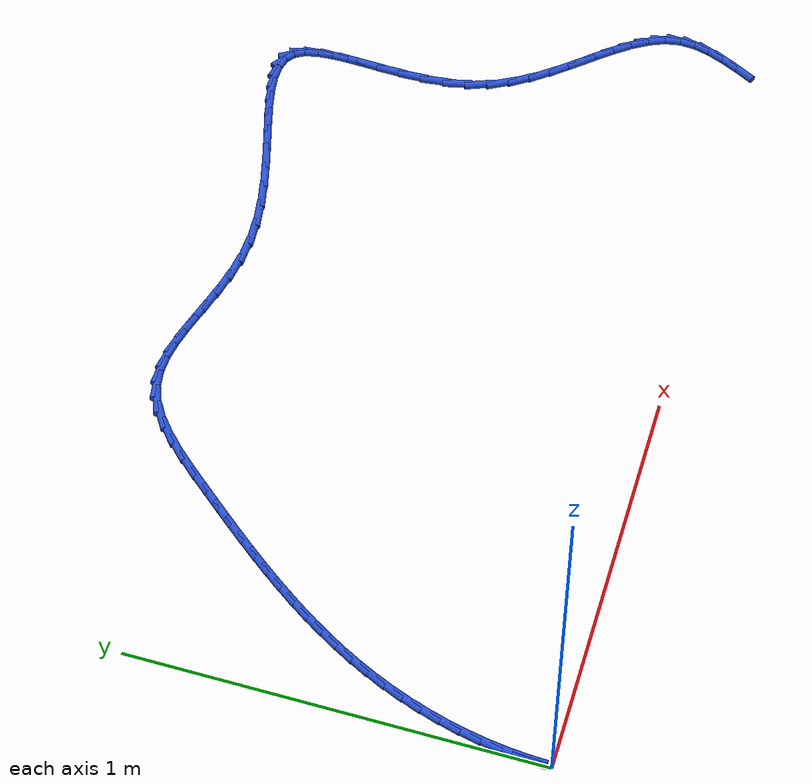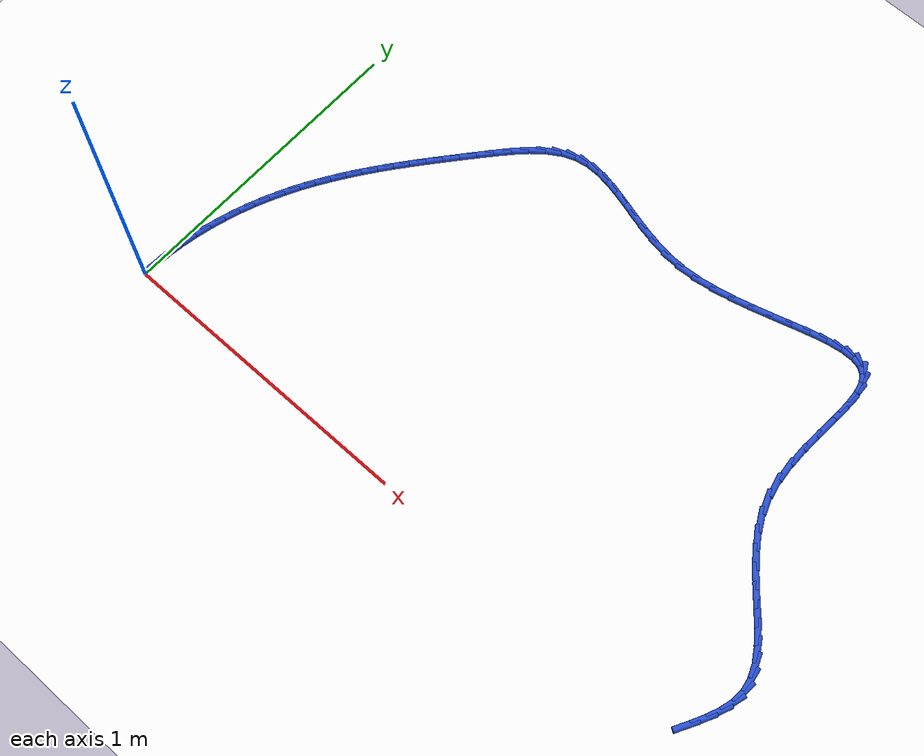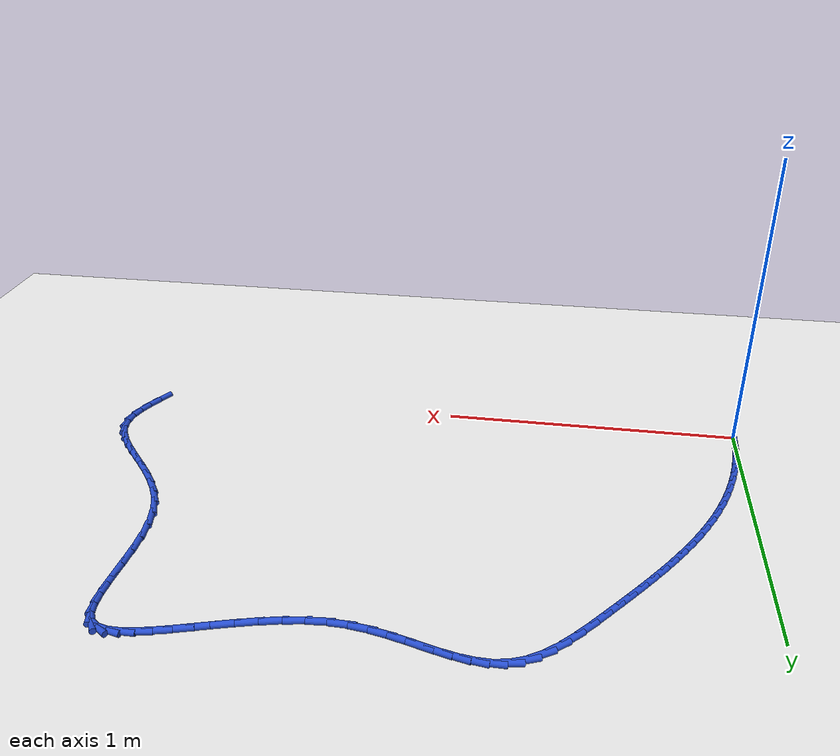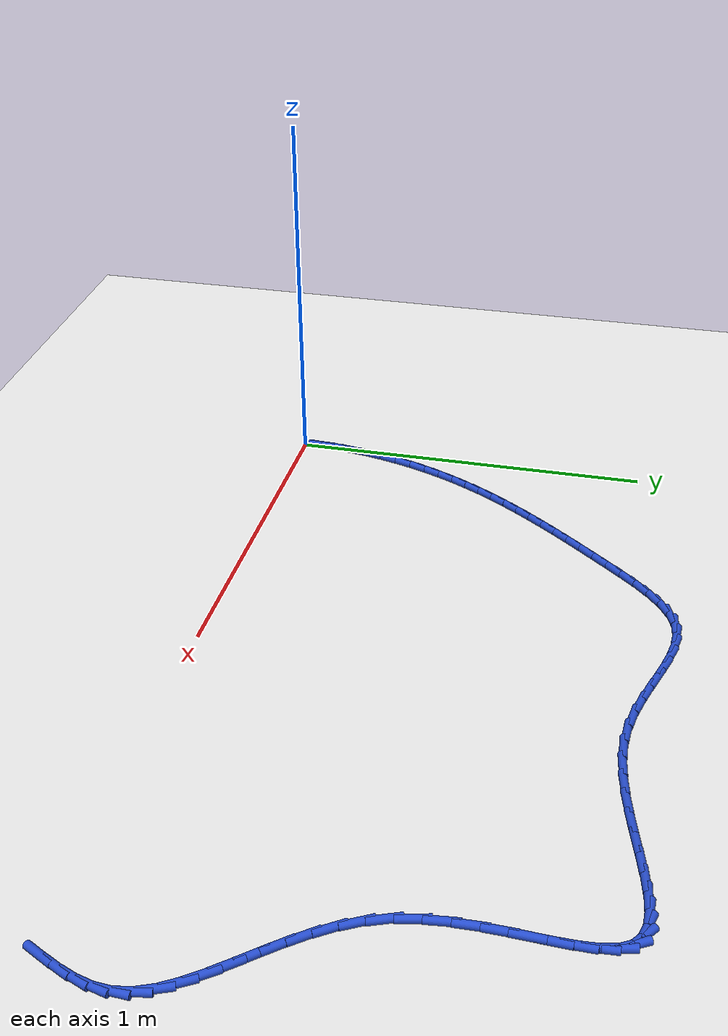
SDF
<sdf version="1.6">
 <world name="default">
  <model name="ground_plane">
   <static>1</static>
   <link name="link">
    <collision name="collision">
     <geometry><plane><normal>0 0 1</normal><size>100 100</size></plane></geometry>
     <surface><friction><ode><mu>100</mu><mu2>50</mu2></ode></friction></surface>
    </collision>
    <visual name="visual">
     <cast_shadows>0</cast_shadows>
     <geometry><plane><normal>0 0 1</normal><size>100 100</size></plane></geometry>
     <material>
      <script><uri>file://media/materials/scripts/gazebo.material</uri><name>Gazebo/WhiteGlow</name></script>
     </material>
    </visual>
   </link>
  </model>
  <model name="line">
   <link name="link_1">
    <pose>0.0019238145655279862 0.05138807101892818 0.01 0 1.57 1.4820030950396204</pose>
    <collision name="collision">
     <geometry><cylinder><radius>0.01</radius><length>0.08</length></cylinder></geometry>
    </collision>
    <visual name="visual">
     <material>
      <script><name>Gazebo/Blue</name><uri>file://media/materials/scripts/gazebo.material</uri></script>
     </material>
     <geometry><cylinder><radius>0.01</radius><length>0.08</length></cylinder></geometry>
    </visual>
   </link>
   <link name="link_2">
    <pose>0.006472638720636303 0.10248276716158493 0.01 0 1.57 1.432549027188589</pose>
    <collision name="collision">
     <geometry><cylinder><radius>0.01</radius><length>0.08</length></cylinder></geometry>
    </collision>
    <visual name="visual">
     <material>
      <script><name>Gazebo/Blue</name><uri>file://media/materials/scripts/gazebo.material</uri></script>
     </material>
     <geometry><cylinder><radius>0.01</radius><length>0.08</length></cylinder></geometry>
    </visual>
   </link>
   <link name="link_3">
    <pose>0.013523373232752885 0.15315832156864048 0.01 0 1.57 1.3848693728598331</pose>
    <collision name="collision">
     <geometry><cylinder><radius>0.01</radius><length>0.08</length></cylinder></geometry>
    </collision>
    <visual name="visual">
     <material>
      <script><name>Gazebo/Blue</name><uri>file://media/materials/scripts/gazebo.material</uri></script>
     </material>
     <geometry><cylinder><radius>0.01</radius><length>0.08</length></cylinder></geometry>
    </visual>
   </link>
   <link name="link_4">
    <pose>0.022952918869305672 0.20328896738076502 0.01 0 1.57 1.3387936132615557</pose>
    <collision name="collision">
     <geometry><cylinder><radius>0.01</radius><length>0.08</length></cylinder></geometry>
    </collision>
    <visual name="visual">
     <material>
      <script><name>Gazebo/Blue</name><uri>file://media/materials/scripts/gazebo.material</uri></script>
     </material>
     <geometry><cylinder><radius>0.01</radius><length>0.08</length></cylinder></geometry>
    </visual>
   </link>
   <link name="link_5">
    <pose>0.034638176397722535 0.25274893773862867 0.01 0 1.57 1.2941311945757217</pose>
    <collision name="collision">
     <geometry><cylinder><radius>0.01</radius><length>0.08</length></cylinder></geometry>
    </collision>
    <visual name="visual">
     <material>
      <script><name>Gazebo/Blue</name><uri>file://media/materials/scripts/gazebo.material</uri></script>
     </material>
     <geometry><cylinder><radius>0.01</radius><length>0.08</length></cylinder></geometry>
    </visual>
   </link>
   <link name="link_6">
    <pose>0.04845604658543143 0.30141246578290176 0.01 0 1.57 1.250675232409833</pose>
    <collision name="collision">
     <geometry><cylinder><radius>0.01</radius><length>0.08</length></cylinder></geometry>
    </collision>
    <visual name="visual">
     <material>
      <script><name>Gazebo/Blue</name><uri>file://media/materials/scripts/gazebo.material</uri></script>
     </material>
     <geometry><cylinder><radius>0.01</radius><length>0.08</length></cylinder></geometry>
    </visual>
   </link>
   <link name="link_7">
    <pose>0.06428343019986027 0.3491537846542544 0.01 0 1.57 1.2082047253122992</pose>
    <collision name="collision">
     <geometry><cylinder><radius>0.01</radius><length>0.08</length></cylinder></geometry>
    </collision>
    <visual name="visual">
     <material>
      <script><name>Gazebo/Blue</name><uri>file://media/materials/scripts/gazebo.material</uri></script>
     </material>
     <geometry><cylinder><radius>0.01</radius><length>0.08</length></cylinder></geometry>
    </visual>
   </link>
   <link name="link_8">
    <pose>0.08199722800843695 0.3958471274933568 0.01 0 1.57 1.1665765389644593</pose>
    <collision name="collision">
     <geometry><cylinder><radius>0.01</radius><length>0.08</length></cylinder></geometry>
    </collision>
    <visual name="visual">
     <material>
      <script><name>Gazebo/Blue</name><uri>file://media/materials/scripts/gazebo.material</uri></script>
     </material>
     <geometry><cylinder><radius>0.01</radius><length>0.08</length></cylinder></geometry>
    </visual>
   </link>
   <link name="link_9">
    <pose>0.10147762272994029 0.4413858772468075 0.01 0 1.57 1.126487077201281</pose>
    <collision name="collision">
     <geometry><cylinder><radius>0.01</radius><length>0.08</length></cylinder></geometry>
    </collision>
    <visual name="visual">
     <material>
      <script><name>Gazebo/Blue</name><uri>file://media/materials/scripts/gazebo.material</uri></script>
     </material>
     <geometry><cylinder><radius>0.01</radius><length>0.08</length></cylinder></geometry>
    </visual>
   </link>
   <link name="link_10">
    <pose>0.12263213767499846 0.48582294604732124 0.01 0 1.57 1.088625387109934</pose>
    <collision name="collision">
     <geometry><cylinder><radius>0.01</radius><length>0.08</length></cylinder></geometry>
    </collision>
    <visual name="visual">
     <material>
      <script><name>Gazebo/Blue</name><uri>file://media/materials/scripts/gazebo.material</uri></script>
     </material>
     <geometry><cylinder><radius>0.01</radius><length>0.08</length></cylinder></geometry>
    </visual>
   </link>
   <link name="link_11">
    <pose>0.1453818709373644 0.5292904533145479 0.01 0 1.57 1.0533178455263743</pose>
    <collision name="collision">
     <geometry><cylinder><radius>0.01</radius><length>0.08</length></cylinder></geometry>
    </collision>
    <visual name="visual">
     <material>
      <script><name>Gazebo/Blue</name><uri>file://media/materials/scripts/gazebo.material</uri></script>
     </material>
     <geometry><cylinder><radius>0.01</radius><length>0.08</length></cylinder></geometry>
    </visual>
   </link>
   <link name="link_12">
    <pose>0.16964801863178497 0.5719210904092823 0.01 0 1.57 1.0208235763637392</pose>
    <collision name="collision">
     <geometry><cylinder><radius>0.01</radius><length>0.08</length></cylinder></geometry>
    </collision>
    <visual name="visual">
     <material>
      <script><name>Gazebo/Blue</name><uri>file://media/materials/scripts/gazebo.material</uri></script>
     </material>
     <geometry><cylinder><radius>0.01</radius><length>0.08</length></cylinder></geometry>
    </visual>
   </link>
   <link name="link_13">
    <pose>0.1953517768730071 0.6138475486923185 0.01 0 1.57 0.9913363438492361</pose>
    <collision name="collision">
     <geometry><cylinder><radius>0.01</radius><length>0.08</length></cylinder></geometry>
    </collision>
    <visual name="visual">
     <material>
      <script><name>Gazebo/Blue</name><uri>file://media/materials/scripts/gazebo.material</uri></script>
     </material>
     <geometry><cylinder><radius>0.01</radius><length>0.08</length></cylinder></geometry>
    </visual>
   </link>
   <link name="link_14">
    <pose>0.22241434177577774 0.6552025195244515 0.01 0 1.57 0.9649876112297826</pose>
    <collision name="collision">
     <geometry><cylinder><radius>0.01</radius><length>0.08</length></cylinder></geometry>
    </collision>
    <visual name="visual">
     <material>
      <script><name>Gazebo/Blue</name><uri>file://media/materials/scripts/gazebo.material</uri></script>
     </material>
     <geometry><cylinder><radius>0.01</radius><length>0.08</length></cylinder></geometry>
    </visual>
   </link>
   <link name="link_15">
    <pose>0.2507569094548437 0.6961186942664758 0.01 0 1.57 0.9418523636959093</pose>
    <collision name="collision">
     <geometry><cylinder><radius>0.01</radius><length>0.08</length></cylinder></geometry>
    </collision>
    <visual name="visual">
     <material>
      <script><name>Gazebo/Blue</name><uri>file://media/materials/scripts/gazebo.material</uri></script>
     </material>
     <geometry><cylinder><radius>0.01</radius><length>0.08</length></cylinder></geometry>
    </visual>
   </link>
   <link name="link_16">
    <pose>0.280300676024952 0.736728764279186 0.01 0 1.57 0.9219565397747371</pose>
    <collision name="collision">
     <geometry><cylinder><radius>0.01</radius><length>0.08</length></cylinder></geometry>
    </collision>
    <visual name="visual">
     <material>
      <script><name>Gazebo/Blue</name><uri>file://media/materials/scripts/gazebo.material</uri></script>
     </material>
     <geometry><cylinder><radius>0.01</radius><length>0.08</length></cylinder></geometry>
    </visual>
   </link>
   <link name="link_17">
    <pose>0.3109668376008495 0.7771654209233767 0.01 0 1.57 0.9052850574311138</pose>
    <collision name="collision">
     <geometry><cylinder><radius>0.01</radius><length>0.08</length></cylinder></geometry>
    </collision>
    <visual name="visual">
     <material>
      <script><name>Gazebo/Blue</name><uri>file://media/materials/scripts/gazebo.material</uri></script>
     </material>
     <geometry><cylinder><radius>0.01</radius><length>0.08</length></cylinder></geometry>
    </visual>
   </link>
   <link name="link_18">
    <pose>0.3426765902972831 0.8175613555598423 0.01 0 1.57 0.8917896555122214</pose>
    <collision name="collision">
     <geometry><cylinder><radius>0.01</radius><length>0.08</length></cylinder></geometry>
    </collision>
    <visual name="visual">
     <material>
      <script><name>Gazebo/Blue</name><uri>file://media/materials/scripts/gazebo.material</uri></script>
     </material>
     <geometry><cylinder><radius>0.01</radius><length>0.08</length></cylinder></geometry>
    </visual>
   </link>
   <link name="link_19">
    <pose>0.3753511302289997 0.8580492595493772 0.01 0 1.57 0.8813960276539247</pose>
    <collision name="collision">
     <geometry><cylinder><radius>0.01</radius><length>0.08</length></cylinder></geometry>
    </collision>
    <visual name="visual">
     <material>
      <script><name>Gazebo/Blue</name><uri>file://media/materials/scripts/gazebo.material</uri></script>
     </material>
     <geometry><cylinder><radius>0.01</radius><length>0.08</length></cylinder></geometry>
    </visual>
   </link>
   <link name="link_20">
    <pose>0.40891165351074626 0.8987618242527766 0.01 0 1.57 0.8740099574078937</pose>
    <collision name="collision">
     <geometry><cylinder><radius>0.01</radius><length>0.08</length></cylinder></geometry>
    </collision>
    <visual name="visual">
     <material>
      <script><name>Gazebo/Blue</name><uri>file://media/materials/scripts/gazebo.material</uri></script>
     </material>
     <geometry><cylinder><radius>0.01</radius><length>0.08</length></cylinder></geometry>
    </visual>
   </link>
   <link name="link_21">
    <pose>0.4432793562572698 0.9398317410308346 0.01 0 1.57 0.8694918686294184</pose>
    <collision name="collision">
     <geometry><cylinder><radius>0.01</radius><length>0.08</length></cylinder></geometry>
    </collision>
    <visual name="visual">
     <material>
      <script><name>Gazebo/Blue</name><uri>file://media/materials/scripts/gazebo.material</uri></script>
     </material>
     <geometry><cylinder><radius>0.01</radius><length>0.08</length></cylinder></geometry>
    </visual>
   </link>
   <link name="link_22">
    <pose>0.4783756923124276 0.9813894368782488 0.01 0 1.57 0.8606278930769663</pose>
    <collision name="collision">
     <geometry><cylinder><radius>0.01</radius><length>0.08</length></cylinder></geometry>
    </collision>
    <visual name="visual">
     <material>
      <script><name>Gazebo/Blue</name><uri>file://media/materials/scripts/gazebo.material</uri></script>
     </material>
     <geometry><cylinder><radius>0.01</radius><length>0.08</length></cylinder></geometry>
    </visual>
   </link>
   <link name="link_23">
    <pose>0.5141825915619406 1.023034006110519 0.01 0 1.57 0.830725294610147</pose>
    <collision name="collision">
     <geometry><cylinder><radius>0.01</radius><length>0.08</length></cylinder></geometry>
    </collision>
    <visual name="visual">
     <material>
      <script><name>Gazebo/Blue</name><uri>file://media/materials/scripts/gazebo.material</uri></script>
     </material>
     <geometry><cylinder><radius>0.01</radius><length>0.08</length></cylinder></geometry>
    </visual>
   </link>
   <link name="link_24">
    <pose>0.5508198999830446 1.063152834668184 0.01 0 1.57 0.7747249734235946</pose>
    <collision name="collision">
     <geometry><cylinder><radius>0.01</radius><length>0.08</length></cylinder></geometry>
    </collision>
    <visual name="visual">
     <material>
      <script><name>Gazebo/Blue</name><uri>file://media/materials/scripts/gazebo.material</uri></script>
     </material>
     <geometry><cylinder><radius>0.01</radius><length>0.08</length></cylinder></geometry>
    </visual>
   </link>
   <link name="link_25">
    <pose>0.5884265962356536 1.099965211849976 0.01 0 1.57 0.6864911175497327</pose>
    <collision name="collision">
     <geometry><cylinder><radius>0.01</radius><length>0.08</length></cylinder></geometry>
    </collision>
    <visual name="visual">
     <material>
      <script><name>Gazebo/Blue</name><uri>file://media/materials/scripts/gazebo.material</uri></script>
     </material>
     <geometry><cylinder><radius>0.01</radius><length>0.08</length></cylinder></geometry>
    </visual>
   </link>
   <link name="link_26">
    <pose>0.6271416589796801 1.1316904269546262 0.01 0 1.57 0.5564521767941234</pose>
    <collision name="collision">
     <geometry><cylinder><radius>0.01</radius><length>0.08</length></cylinder></geometry>
    </collision>
    <visual name="visual">
     <material>
      <script><name>Gazebo/Blue</name><uri>file://media/materials/scripts/gazebo.material</uri></script>
     </material>
     <geometry><cylinder><radius>0.01</radius><length>0.08</length></cylinder></geometry>
    </visual>
   </link>
   <link name="link_27">
    <pose>0.6671040668750384 1.1565477692808674 0.01 0 1.57 0.3738827974162874</pose>
    <collision name="collision">
     <geometry><cylinder><radius>0.01</radius><length>0.08</length></cylinder></geometry>
    </collision>
    <visual name="visual">
     <material>
      <script><name>Gazebo/Blue</name><uri>file://media/materials/scripts/gazebo.material</uri></script>
     </material>
     <geometry><cylinder><radius>0.01</radius><length>0.08</length></cylinder></geometry>
    </visual>
   </link>
   <link name="link_28">
    <pose>0.7084524928693058 1.1727702800128634 0.01 0 1.57 0.16207478048670507</pose>
    <collision name="collision">
     <geometry><cylinder><radius>0.01</radius><length>0.08</length></cylinder></geometry>
    </collision>
    <visual name="visual">
     <material>
      <script><name>Gazebo/Blue</name><uri>file://media/materials/scripts/gazebo.material</uri></script>
     </material>
     <geometry><cylinder><radius>0.01</radius><length>0.08</length></cylinder></geometry>
    </visual>
   </link>
   <link name="link_29">
    <pose>0.7512992641866133 1.179776112379795 0.01 0 1.57 -0.016029814294842244</pose>
    <collision name="collision">
     <geometry><cylinder><radius>0.01</radius><length>0.08</length></cylinder></geometry>
    </collision>
    <visual name="visual">
     <material>
      <script><name>Gazebo/Blue</name><uri>file://media/materials/scripts/gazebo.material</uri></script>
     </material>
     <geometry><cylinder><radius>0.01</radius><length>0.08</length></cylinder></geometry>
    </visual>
   </link>
   <link name="link_30">
    <pose>0.7957104522537091 1.1790641483005242 0.01 0 1.57 -0.14494618474959392</pose>
    <collision name="collision">
     <geometry><cylinder><radius>0.01</radius><length>0.08</length></cylinder></geometry>
    </collision>
    <visual name="visual">
     <material>
      <script><name>Gazebo/Blue</name><uri>file://media/materials/scripts/gazebo.material</uri></script>
     </material>
     <geometry><cylinder><radius>0.01</radius><length>0.08</length></cylinder></geometry>
    </visual>
   </link>
   <link name="link_31">
    <pose>0.8417474408342993 1.1723441352617516 0.01 0 1.57 -0.226899189550946</pose>
    <collision name="collision">
     <geometry><cylinder><radius>0.01</radius><length>0.08</length></cylinder></geometry>
    </collision>
    <visual name="visual">
     <material>
      <script><name>Gazebo/Blue</name><uri>file://media/materials/scripts/gazebo.material</uri></script>
     </material>
     <geometry><cylinder><radius>0.01</radius><length>0.08</length></cylinder></geometry>
    </visual>
   </link>
   <link name="link_32">
    <pose>0.8894716136920893 1.1613258207501773 0.01 0 1.57 -0.268401252971268</pose>
    <collision name="collision">
     <geometry><cylinder><radius>0.01</radius><length>0.08</length></cylinder></geometry>
    </collision>
    <visual name="visual">
     <material>
      <script><name>Gazebo/Blue</name><uri>file://media/materials/scripts/gazebo.material</uri></script>
     </material>
     <geometry><cylinder><radius>0.01</radius><length>0.08</length></cylinder></geometry>
    </visual>
   </link>
   <link name="link_33">
    <pose>0.9389443545907854 1.1477189522525018 0.01 0 1.57 -0.275295002937172</pose>
    <collision name="collision">
     <geometry><cylinder><radius>0.01</radius><length>0.08</length></cylinder></geometry>
    </collision>
    <visual name="visual">
     <material>
      <script><name>Gazebo/Blue</name><uri>file://media/materials/scripts/gazebo.material</uri></script>
     </material>
     <geometry><cylinder><radius>0.01</radius><length>0.08</length></cylinder></geometry>
    </visual>
   </link>
   <link name="link_34">
    <pose>0.9902270472940934 1.1332332772554254 0.01 0 1.57 -0.25145270660123314</pose>
    <collision name="collision">
     <geometry><cylinder><radius>0.01</radius><length>0.08</length></cylinder></geometry>
    </collision>
    <visual name="visual">
     <material>
      <script><name>Gazebo/Blue</name><uri>file://media/materials/scripts/gazebo.material</uri></script>
     </material>
     <geometry><cylinder><radius>0.01</radius><length>0.08</length></cylinder></geometry>
    </visual>
   </link>
   <link name="link_35">
    <pose>1.0433810755657185 1.1195785432456482 0.01 0 1.57 -0.19908281637111164</pose>
    <collision name="collision">
     <geometry><cylinder><radius>0.01</radius><length>0.08</length></cylinder></geometry>
    </collision>
    <visual name="visual">
     <material>
      <script><name>Gazebo/Blue</name><uri>file://media/materials/scripts/gazebo.material</uri></script>
     </material>
     <geometry><cylinder><radius>0.01</radius><length>0.08</length></cylinder></geometry>
    </visual>
   </link>
   <link name="link_36">
    <pose>1.0984678231693672 1.10846449770987 0.01 0 1.57 -0.11966910587939088</pose>
    <collision name="collision">
     <geometry><cylinder><radius>0.01</radius><length>0.08</length></cylinder></geometry>
    </collision>
    <visual name="visual">
     <material>
      <script><name>Gazebo/Blue</name><uri>file://media/materials/scripts/gazebo.material</uri></script>
     </material>
     <geometry><cylinder><radius>0.01</radius><length>0.08</length></cylinder></geometry>
    </visual>
   </link>
   <link name="link_37">
    <pose>1.1555486738687453 1.1016008881347923 0.01 0 1.57 -0.015831266339124694</pose>
    <collision name="collision">
     <geometry><cylinder><radius>0.01</radius><length>0.08</length></cylinder></geometry>
    </collision>
    <visual name="visual">
     <material>
      <script><name>Gazebo/Blue</name><uri>file://media/materials/scripts/gazebo.material</uri></script>
     </material>
     <geometry><cylinder><radius>0.01</radius><length>0.08</length></cylinder></geometry>
    </visual>
   </link>
   <link name="link_38">
    <pose>1.2146753373398336 1.1006647599693775 0.01 0 1.57 0.08825302025232669</pose>
    <collision name="collision">
     <geometry><cylinder><radius>0.01</radius><length>0.08</length></cylinder></geometry>
    </collision>
    <visual name="visual">
     <material>
      <script><name>Gazebo/Blue</name><uri>file://media/materials/scripts/gazebo.material</uri></script>
     </material>
     <geometry><cylinder><radius>0.01</radius><length>0.08</length></cylinder></geometry>
    </visual>
   </link>
   <link name="link_39">
    <pose>1.2755194658612186 1.1060484223953055 0.01 0 1.57 0.16718868573415713</pose>
    <collision name="collision">
     <geometry><cylinder><radius>0.01</radius><length>0.08</length></cylinder></geometry>
    </collision>
    <visual name="visual">
     <material>
      <script><name>Gazebo/Blue</name><uri>file://media/materials/scripts/gazebo.material</uri></script>
     </material>
     <geometry><cylinder><radius>0.01</radius><length>0.08</length></cylinder></geometry>
    </visual>
   </link>
   <link name="link_40">
    <pose>1.3372566904134169 1.1164674469347995 0.01 0 1.57 0.22375195352338467</pose>
    <collision name="collision">
     <geometry><cylinder><radius>0.01</radius><length>0.08</length></cylinder></geometry>
    </collision>
    <visual name="visual">
     <material>
      <script><name>Gazebo/Blue</name><uri>file://media/materials/scripts/gazebo.material</uri></script>
     </material>
     <geometry><cylinder><radius>0.01</radius><length>0.08</length></cylinder></geometry>
    </visual>
   </link>
   <link name="link_41">
    <pose>1.3990292583135118 1.1305245558314034 0.01 0 1.57 0.26128451146765796</pose>
    <collision name="collision">
     <geometry><cylinder><radius>0.01</radius><length>0.08</length></cylinder></geometry>
    </collision>
    <visual name="visual">
     <material>
      <script><name>Gazebo/Blue</name><uri>file://media/materials/scripts/gazebo.material</uri></script>
     </material>
     <geometry><cylinder><radius>0.01</radius><length>0.08</length></cylinder></geometry>
    </visual>
   </link>
   <link name="link_42">
    <pose>1.4599794168785825 1.14682247132866 0.01 0 1.57 0.2815280647537304</pose>
    <collision name="collision">
     <geometry><cylinder><radius>0.01</radius><length>0.08</length></cylinder></geometry>
    </collision>
    <visual name="visual">
     <material>
      <script><name>Gazebo/Blue</name><uri>file://media/materials/scripts/gazebo.material</uri></script>
     </material>
     <geometry><cylinder><radius>0.01</radius><length>0.08</length></cylinder></geometry>
    </visual>
   </link>
   <link name="link_43">
    <pose>1.5192494134257106 1.1639639156701138 0.01 0 1.57 0.2844573885997822</pose>
    <collision name="collision">
     <geometry><cylinder><radius>0.01</radius><length>0.08</length></cylinder></geometry>
    </collision>
    <visual name="visual">
     <material>
      <script><name>Gazebo/Blue</name><uri>file://media/materials/scripts/gazebo.material</uri></script>
     </material>
     <geometry><cylinder><radius>0.01</radius><length>0.08</length></cylinder></geometry>
    </visual>
   </link>
   <link name="link_44">
    <pose>1.5759814952719768 1.1805516110993077 0.01 0 1.57 0.2678284771540373</pose>
    <collision name="collision">
     <geometry><cylinder><radius>0.01</radius><length>0.08</length></cylinder></geometry>
    </collision>
    <visual name="visual">
     <material>
      <script><name>Gazebo/Blue</name><uri>file://media/materials/scripts/gazebo.material</uri></script>
     </material>
     <geometry><cylinder><radius>0.01</radius><length>0.08</length></cylinder></geometry>
    </visual>
   </link>
   <link name="link_45">
    <pose>1.629317909734463 1.1951882798597862 0.01 0 1.57 0.22605437125081868</pose>
    <collision name="collision">
     <geometry><cylinder><radius>0.01</radius><length>0.08</length></cylinder></geometry>
    </collision>
    <visual name="visual">
     <material>
      <script><name>Gazebo/Blue</name><uri>file://media/materials/scripts/gazebo.material</uri></script>
     </material>
     <geometry><cylinder><radius>0.01</radius><length>0.08</length></cylinder></geometry>
    </visual>
   </link>
   <link name="link_46">
    <pose>1.6784009041302492 1.206476644195092 0.01 0 1.57 0.1477111433693948</pose>
    <collision name="collision">
     <geometry><cylinder><radius>0.01</radius><length>0.08</length></cylinder></geometry>
    </collision>
    <visual name="visual">
     <material>
      <script><name>Gazebo/Blue</name><uri>file://media/materials/scripts/gazebo.material</uri></script>
     </material>
     <geometry><cylinder><radius>0.01</radius><length>0.08</length></cylinder></geometry>
    </visual>
   </link>
   <link name="link_47">
    <pose>1.7223727257764168 1.2130194263487688 0.01 0 1.57 0.010523078331075587</pose>
    <collision name="collision">
     <geometry><cylinder><radius>0.01</radius><length>0.08</length></cylinder></geometry>
    </collision>
    <visual name="visual">
     <material>
      <script><name>Gazebo/Blue</name><uri>file://media/materials/scripts/gazebo.material</uri></script>
     </material>
     <geometry><cylinder><radius>0.01</radius><length>0.08</length></cylinder></geometry>
    </visual>
   </link>
   <link name="link_48">
    <pose>1.760375621990047 1.2134193485643607 0.01 0 1.57 -0.2251446801802223</pose>
    <collision name="collision">
     <geometry><cylinder><radius>0.01</radius><length>0.08</length></cylinder></geometry>
    </collision>
    <visual name="visual">
     <material>
      <script><name>Gazebo/Blue</name><uri>file://media/materials/scripts/gazebo.material</uri></script>
     </material>
     <geometry><cylinder><radius>0.01</radius><length>0.08</length></cylinder></geometry>
    </visual>
   </link>
   <link name="link_49">
    <pose>1.7915518400882209 1.206279133085411 0.01 0 1.57 -0.6001749595326926</pose>
    <collision name="collision">
     <geometry><cylinder><radius>0.01</radius><length>0.08</length></cylinder></geometry>
    </collision>
    <visual name="visual">
     <material>
      <script><name>Gazebo/Blue</name><uri>file://media/materials/scripts/gazebo.material</uri></script>
     </material>
     <geometry><cylinder><radius>0.01</radius><length>0.08</length></cylinder></geometry>
    </visual>
   </link>
   <link name="link_50">
    <pose>1.815043627388019 1.1902015021554633 0.01 0 1.57 -1.0426361062747604</pose>
    <collision name="collision">
     <geometry><cylinder><radius>0.01</radius><length>0.08</length></cylinder></geometry>
    </collision>
    <visual name="visual">
     <material>
      <script><name>Gazebo/Blue</name><uri>file://media/materials/scripts/gazebo.material</uri></script>
     </material>
     <geometry><cylinder><radius>0.01</radius><length>0.08</length></cylinder></geometry>
    </visual>
   </link>
   <link name="link_51">
    <pose>1.8302728174612575 1.1640994634006134 0.01 0 1.57 -1.3463260154593992</pose>
    <collision name="collision">
     <geometry><cylinder><radius>0.01</radius><length>0.08</length></cylinder></geometry>
    </collision>
    <visual name="visual">
     <material>
      <script><name>Gazebo/Blue</name><uri>file://media/materials/scripts/gazebo.material</uri></script>
     </material>
     <geometry><cylinder><radius>0.01</radius><length>0.08</length></cylinder></geometry>
    </visual>
   </link>
   <link name="link_52">
    <pose>1.8383431428510466 1.1287525992763086 0.01 0 1.57 -1.509618413375942</pose>
    <collision name="collision">
     <geometry><cylinder><radius>0.01</radius><length>0.08</length></cylinder></geometry>
    </collision>
    <visual name="visual">
     <material>
      <script><name>Gazebo/Blue</name><uri>file://media/materials/scripts/gazebo.material</uri></script>
     </material>
     <geometry><cylinder><radius>0.01</radius><length>0.08</length></cylinder></geometry>
    </visual>
   </link>
   <link name="link_53">
    <pose>1.8409842737178237 1.0856351590528233 0.01 0 1.57 1.5494013845881844</pose>
    <collision name="collision">
     <geometry><cylinder><radius>0.01</radius><length>0.08</length></cylinder></geometry>
    </collision>
    <visual name="visual">
     <material>
      <script><name>Gazebo/Blue</name><uri>file://media/materials/scripts/gazebo.material</uri></script>
     </material>
     <geometry><cylinder><radius>0.01</radius><length>0.08</length></cylinder></geometry>
    </visual>
   </link>
   <link name="link_54">
    <pose>1.8399269326820187 1.0362225600226287 0.01 0 1.57 1.5150738800068726</pose>
    <collision name="collision">
     <geometry><cylinder><radius>0.01</radius><length>0.08</length></cylinder></geometry>
    </collision>
    <visual name="visual">
     <material>
      <script><name>Gazebo/Blue</name><uri>file://media/materials/scripts/gazebo.material</uri></script>
     </material>
     <geometry><cylinder><radius>0.01</radius><length>0.08</length></cylinder></geometry>
    </visual>
   </link>
   <link name="link_55">
    <pose>1.8369018423640626 0.9819902194781968 0.01 0 1.57 1.5141999048447001</pose>
    <collision name="collision">
     <geometry><cylinder><radius>0.01</radius><length>0.08</length></cylinder></geometry>
    </collision>
    <visual name="visual">
     <material>
      <script><name>Gazebo/Blue</name><uri>file://media/materials/scripts/gazebo.material</uri></script>
     </material>
     <geometry><cylinder><radius>0.01</radius><length>0.08</length></cylinder></geometry>
    </visual>
   </link>
   <link name="link_56">
    <pose>1.8336397253843852 0.9244135547119975 0.01 0 1.57 1.5410565232010938</pose>
    <collision name="collision">
     <geometry><cylinder><radius>0.01</radius><length>0.08</length></cylinder></geometry>
    </collision>
    <visual name="visual">
     <material>
      <script><name>Gazebo/Blue</name><uri>file://media/materials/scripts/gazebo.material</uri></script>
     </material>
     <geometry><cylinder><radius>0.01</radius><length>0.08</length></cylinder></geometry>
    </visual>
   </link>
   <link name="link_57">
    <pose>1.8318713043634167 0.8649679830165024 0.01 0 1.57 -1.5464692352420188</pose>
    <collision name="collision">
     <geometry><cylinder><radius>0.01</radius><length>0.08</length></cylinder></geometry>
    </collision>
    <visual name="visual">
     <material>
      <script><name>Gazebo/Blue</name><uri>file://media/materials/scripts/gazebo.material</uri></script>
     </material>
     <geometry><cylinder><radius>0.01</radius><length>0.08</length></cylinder></geometry>
    </visual>
   </link>
   <link name="link_58">
    <pose>1.8333273019215874 0.8051289216841819 0.01 0 1.57 -1.4621137570448002</pose>
    <collision name="collision">
     <geometry><cylinder><radius>0.01</radius><length>0.08</length></cylinder></geometry>
    </collision>
    <visual name="visual">
     <material>
      <script><name>Gazebo/Blue</name><uri>file://media/materials/scripts/gazebo.material</uri></script>
     </material>
     <geometry><cylinder><radius>0.01</radius><length>0.08</length></cylinder></geometry>
    </visual>
   </link>
   <link name="link_59">
    <pose>1.839738440679327 0.7463717880075077 0.01 0 1.57 -1.3418417613071187</pose>
    <collision name="collision">
     <geometry><cylinder><radius>0.01</radius><length>0.08</length></cylinder></geometry>
    </collision>
    <visual name="visual">
     <material>
      <script><name>Gazebo/Blue</name><uri>file://media/materials/scripts/gazebo.material</uri></script>
     </material>
     <geometry><cylinder><radius>0.01</radius><length>0.08</length></cylinder></geometry>
    </visual>
   </link>
   <link name="link_60">
    <pose>1.8528353070375783 0.6901719222535345 0.01 0 1.57 -1.1936124835579938</pose>
    <collision name="collision">
     <geometry><cylinder><radius>0.01</radius><length>0.08</length></cylinder></geometry>
    </collision>
    <visual name="visual">
     <material>
      <script><name>Gazebo/Blue</name><uri>file://media/materials/scripts/gazebo.material</uri></script>
     </material>
     <geometry><cylinder><radius>0.01</radius><length>0.08</length></cylinder></geometry>
    </visual>
   </link>
   <link name="link_61">
    <pose>1.873656438040158 0.6376133448382011 0.01 0 1.57 -1.0639305635140832</pose>
    <collision name="collision">
     <geometry><cylinder><radius>0.01</radius><length>0.08</length></cylinder></geometry>
    </collision>
    <visual name="visual">
     <material>
      <script><name>Gazebo/Blue</name><uri>file://media/materials/scripts/gazebo.material</uri></script>
     </material>
     <geometry><cylinder><radius>0.01</radius><length>0.08</length></cylinder></geometry>
    </visual>
   </link>
   <link name="link_62">
    <pose>1.9009385920833592 0.5884785336380638 0.01 0 1.57 -0.9649855538932453</pose>
    <collision name="collision">
     <geometry><cylinder><radius>0.01</radius><length>0.08</length></cylinder></geometry>
    </collision>
    <visual name="visual">
     <material>
      <script><name>Gazebo/Blue</name><uri>file://media/materials/scripts/gazebo.material</uri></script>
     </material>
     <geometry><cylinder><radius>0.01</radius><length>0.08</length></cylinder></geometry>
    </visual>
   </link>
   <link name="link_63">
    <pose>1.9329405815972684 0.5422797116086805 0.01 0 1.57 -0.8963321040819026</pose>
    <collision name="collision">
     <geometry><cylinder><radius>0.01</radius><length>0.08</length></cylinder></geometry>
    </collision>
    <visual name="visual">
     <material>
      <script><name>Gazebo/Blue</name><uri>file://media/materials/scripts/gazebo.material</uri></script>
     </material>
     <geometry><cylinder><radius>0.01</radius><length>0.08</length></cylinder></geometry>
    </visual>
   </link>
   <link name="link_64">
    <pose>1.9679212190119701 0.4985291017056068 0.01 0 1.57 -0.8567063629016303</pose>
    <collision name="collision">
     <geometry><cylinder><radius>0.01</radius><length>0.08</length></cylinder></geometry>
    </collision>
    <visual name="visual">
     <material>
      <script><name>Gazebo/Blue</name><uri>file://media/materials/scripts/gazebo.material</uri></script>
     </material>
     <geometry><cylinder><radius>0.01</radius><length>0.08</length></cylinder></geometry>
    </visual>
   </link>
   <link name="link_65">
    <pose>2.004139316757548 0.45673892688439904 0.01 0 1.57 -0.8458666680850087</pose>
    <collision name="collision">
     <geometry><cylinder><radius>0.01</radius><length>0.08</length></cylinder></geometry>
    </collision>
    <visual name="visual">
     <material>
      <script><name>Gazebo/Blue</name><uri>file://media/materials/scripts/gazebo.material</uri></script>
     </material>
     <geometry><cylinder><radius>0.01</radius><length>0.08</length></cylinder></geometry>
    </visual>
   </link>
   <link name="link_66">
    <pose>2.0398536872640887 0.4164214101006139 0.01 0 1.57 -0.8657605929521367</pose>
    <collision name="collision">
     <geometry><cylinder><radius>0.01</radius><length>0.08</length></cylinder></geometry>
    </collision>
    <visual name="visual">
     <material>
      <script><name>Gazebo/Blue</name><uri>file://media/materials/scripts/gazebo.material</uri></script>
     </material>
     <geometry><cylinder><radius>0.01</radius><length>0.08</length></cylinder></geometry>
    </visual>
   </link>
   <link name="link_67">
    <pose>2.0733231429616756 0.3770887743098072 0.01 0 1.57 -0.9214426864944999</pose>
    <collision name="collision">
     <geometry><cylinder><radius>0.01</radius><length>0.08</length></cylinder></geometry>
    </collision>
    <visual name="visual">
     <material>
      <script><name>Gazebo/Blue</name><uri>file://media/materials/scripts/gazebo.material</uri></script>
     </material>
     <geometry><cylinder><radius>0.01</radius><length>0.08</length></cylinder></geometry>
    </visual>
   </link>
   <link name="link_68">
    <pose>2.102806496280394 0.338253242467536 0.01 0 1.57 -1.0217044409157192</pose>
    <collision name="collision">
     <geometry><cylinder><radius>0.01</radius><length>0.08</length></cylinder></geometry>
    </collision>
    <visual name="visual">
     <material>
      <script><name>Gazebo/Blue</name><uri>file://media/materials/scripts/gazebo.material</uri></script>
     </material>
     <geometry><cylinder><radius>0.01</radius><length>0.08</length></cylinder></geometry>
    </visual>
   </link>
   <link name="link_69">
    <pose>2.126562559650329 0.2994270375293566 0.01 0 1.57 -1.1779438364081947</pose>
    <collision name="collision">
     <geometry><cylinder><radius>0.01</radius><length>0.08</length></cylinder></geometry>
    </collision>
    <visual name="visual">
     <material>
      <script><name>Gazebo/Blue</name><uri>file://media/materials/scripts/gazebo.material</uri></script>
     </material>
     <geometry><cylinder><radius>0.01</radius><length>0.08</length></cylinder></geometry>
    </visual>
   </link>
   <link name="link_70">
    <pose>2.1428501455015656 0.2601223824508253 0.01 0 1.57 -1.3968154949582774</pose>
    <collision name="collision">
     <geometry><cylinder><radius>0.01</radius><length>0.08</length></cylinder></geometry>
    </collision>
    <visual name="visual">
     <material>
      <script><name>Gazebo/Blue</name><uri>file://media/materials/scripts/gazebo.material</uri></script>
     </material>
     <geometry><cylinder><radius>0.01</radius><length>0.08</length></cylinder></geometry>
    </visual>
   </link>
   <link name="link_71">
    <pose>2.149928066264188 0.219851500187498 0.01 0 1.57 1.490319147799225</pose>
    <collision name="collision">
     <geometry><cylinder><radius>0.01</radius><length>0.08</length></cylinder></geometry>
    </collision>
    <visual name="visual">
     <material>
      <script><name>Gazebo/Blue</name><uri>file://media/materials/scripts/gazebo.material</uri></script>
     </material>
     <geometry><cylinder><radius>0.01</radius><length>0.08</length></cylinder></geometry>
    </visual>
   </link>
   <link name="link_72">
    <pose>2.146568513683111 0.17819625469007658 0.01 0 1.57 1.2910727379119944</pose>
    <collision name="collision">
     <geometry><cylinder><radius>0.01</radius><length>0.08</length></cylinder></geometry>
    </collision>
    <visual name="visual">
     <material>
      <script><name>Gazebo/Blue</name><uri>file://media/materials/scripts/gazebo.material</uri></script>
     </material>
     <geometry><cylinder><radius>0.01</radius><length>0.08</length></cylinder></geometry>
    </visual>
   </link>
   <link name="link_73">
    <pose>2.1341881001240544 0.13509723118667571 0.01 0 1.57 1.1645805388480328</pose>
    <collision name="collision">
     <geometry><cylinder><radius>0.01</radius><length>0.08</length></cylinder></geometry>
    </collision>
    <visual name="visual">
     <material>
      <script><name>Gazebo/Blue</name><uri>file://media/materials/scripts/gazebo.material</uri></script>
     </material>
     <geometry><cylinder><radius>0.01</radius><length>0.08</length></cylinder></geometry>
    </visual>
   </link>
   <link name="link_74">
    <pose>2.115052465065341 0.09061018723767712 0.01 0 1.57 1.0947395931201396</pose>
    <collision name="collision">
     <geometry><cylinder><radius>0.01</radius><length>0.08</length></cylinder></geometry>
    </collision>
    <visual name="visual">
     <material>
      <script><name>Gazebo/Blue</name><uri>file://media/materials/scripts/gazebo.material</uri></script>
     </material>
     <geometry><cylinder><radius>0.01</radius><length>0.08</length></cylinder></geometry>
    </visual>
   </link>
   <link name="link_75">
    <pose>2.091427643241047 0.04479093402074577 0.01 0 1.57 1.0688442026982843</pose>
    <collision name="collision">
     <geometry><cylinder><radius>0.01</radius><length>0.08</length></cylinder></geometry>
    </collision>
    <visual name="visual">
     <material>
      <script><name>Gazebo/Blue</name><uri>file://media/materials/scripts/gazebo.material</uri></script>
     </material>
     <geometry><cylinder><radius>0.01</radius><length>0.08</length></cylinder></geometry>
    </visual>
   </link>
   <link name="link_151">
    <pose>0.0019480364240352672 0.05136772232302307 0.01 0 1.57 1.5328911352714776</pose>
    <collision name="collision">
     <geometry><cylinder><radius>0.01</radius><length>0.08</length></cylinder></geometry>
    </collision>
    <visual name="visual">
     <material>
      <script><name>Gazebo/Blue</name><uri>file://media/materials/scripts/gazebo.material</uri></script>
     </material>
     <geometry><cylinder><radius>0.01</radius><length>0.08</length></cylinder></geometry>
    </visual>
   </link>
  </model>
 </world>
</sdf>
